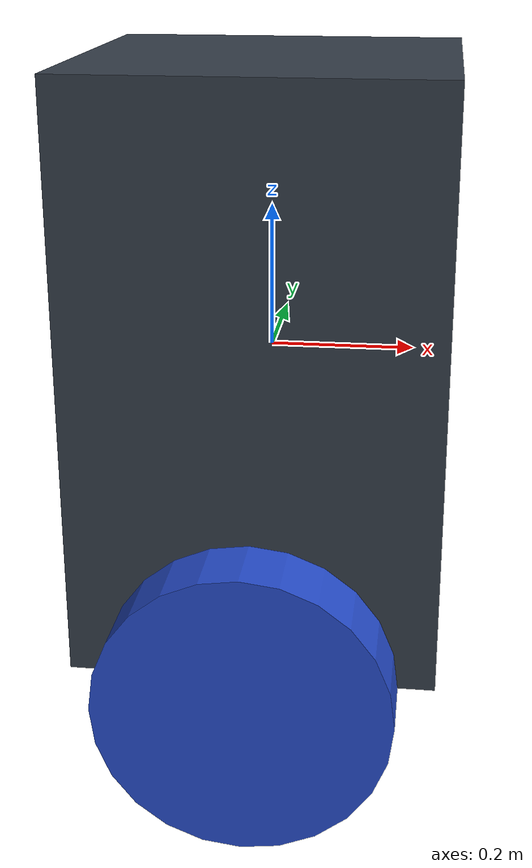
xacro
<?xml version="1.0" ?>

<robot name="m2wr" xmlns:xacro="https://www.ros.org/wiki/xacro" >

  <material name="black">
    <color rgba="0.0 0.0 0.0 1.0"/>
  </material>
  <material name="blue">
    <color rgba="0.203125 0.23828125 0.28515625 1.0"/>
  </material>
  <material name="green">
    <color rgba="0.0 0.8 0.0 1.0"/>
  </material>
  <material name="grey">
    <color rgba="0.2 0.2 0.2 1.0"/>
  </material>
  <material name="orange">
    <color rgba="1.0 0.423529411765 0.0392156862745 1.0"/>
  </material>
  <material name="brown">
    <color rgba="0.870588235294 0.811764705882 0.764705882353 1.0"/>
  </material>
  <material name="red">
    <color rgba="0.80078125 0.12890625 0.1328125 1.0"/>
  </material>
  <material name="white">
    <color rgba="1.0 1.0 1.0 1.0"/>
  </material>

  <gazebo reference="link_chassis">
    <material>Gazebo/Orange</material>
  </gazebo>
  <gazebo reference="link_left_wheel">
    <material>Gazebo/Blue</material>
  </gazebo>
  <gazebo reference="link_right_wheel">
    <material>Gazebo/Blue</material>
  </gazebo>

  <link name="link_chassis">
    <!-- pose and inertial -->
    <pose>0 0 0 0 0 0</pose>

    <inertial>
      <mass value="5"/>
      <origin rpy="0 0 0" xyz="0 0 0.1"/>
      <inertia ixx="0.0395416666667" ixy="0" ixz="0" iyy="0.106208333333" iyz="0" izz="0.106208333333"/>
    </inertial>

    <collision name="collision_chassis">
      <geometry>
        <box size="0.5 0.5 0.8"/>
      </geometry>
    </collision>

    <visual>
      <origin rpy="0 0 0" xyz="0 0 0"/>
      <geometry>
        <box size="0.5 0.5 0.8"/>
      </geometry>
      <material name="blue"/>
    </visual>

    <!-- caster front -->
    </link>

  <!-- Create wheel right -->

  <link name="link_right_wheel">
    <inertial>
      <mass value="0.2"/>
      <origin rpy="0 1.5707 1.5707" xyz="0 0 0"/>
      <inertia ixx="0.00052666666" ixy="0" ixz="0" iyy="0.00052666666" iyz="0" izz="0.001"/>
    </inertial>

    <collision name="link_right_wheel_collision">
      <origin rpy="0 1.5707 1.5707" xyz="0 0 0" />
      <geometry>
        <cylinder length="0.1" radius="0.2"/>
      </geometry>
    </collision>

    <visual name="link_right_wheel_visual">
      <origin rpy="0 1.5707 1.5707" xyz="0 0 0"/>
      <geometry>
        <cylinder length="0.1" radius="0.2"/>
      </geometry>
    </visual>

  </link>

  <!--   Joint for right wheel  -->
  <joint name="joint_right_wheel" type="continuous">
    <origin rpy="0 0 0" xyz="0 0.3 -0.4"/>
    <child link="link_right_wheel" />
    <parent link="link_chassis"/>
    <axis rpy="0 0 0" xyz="0 -1 0"/>
    <limit effort="10000" velocity="1000"/>
    <joint_properties damping="1.0" friction="1.0" />
  </joint>

  <!-- Left Wheel link -->

  <link name="link_left_wheel">
    <inertial>
      <mass value="0.2"/>
      <origin rpy="0 1.5707 1.5707" xyz="0 0 0"/>
      <inertia ixx="0.00052666666" ixy="0" ixz="0" iyy="0.00052666666" iyz="0" izz="0.001"/>
    </inertial>

    <collision name="link_left_wheel_collision">
      <origin rpy="0 1.5707 1.5707" xyz="0 0 0" />
      <geometry>
        <cylinder length="0.1" radius="0.2"/>
      </geometry>
    </collision>

    <visual name="link_left_wheel_visual">
      <origin rpy="0 1.5707 1.5707" xyz="0 0 0"/>
      <geometry>
        <cylinder length="0.1" radius="0.2"/>
      </geometry>
    </visual>

  </link>

  <!--   Joint for right wheel  -->
  <joint name="joint_left_wheel" type="continuous">
    <origin rpy="0 0 0" xyz="0 -0.3 -0.4"/>
    <child link="link_left_wheel" />
    <parent link="link_chassis"/>
    <axis rpy="0 0 0" xyz="0 1 0"/>
    <limit effort="10000" velocity="1000"/>
    <joint_properties damping="1.0" friction="1.0" />
  </joint>

  <gazebo>
    <plugin name="differential_drive_controller" filename="libgazebo_ros_diff_drive.so">
      <update_rate>20</update_rate>
      <left_joint>joint_left_wheel</left_joint>
      <right_joint>joint_right_wheel</right_joint>
      <wheel_separation>0.4</wheel_separation>
      <wheel_diameter>0.2</wheel_diameter>
      <wheel_torque>0.1</wheel_torque>
      <command_topic>cmd_vel</command_topic>
      <odometry_topic>odom</odometry_topic>
      <odometry_frame>odom</odometry_frame>
      <robot_base_frame>link_chassis</robot_base_frame>
    </plugin>

  </gazebo>
  <gazebo reference="link_chassis">
  	<sensor name="my_imu" type="imu">
	    <always_on>true</always_on>
	    <!-- Publish at 30 hz -->
	    <update_rate>30</update_rate>
	    <plugin name="my_imu_plugin" filename="libgazebo_ros_imu_sensor.so">
	      <ros>
		<!-- Will publish to /imu/data -->
		<namespace>/imu</namespace>
		<remapping>~/out:=data</remapping>
	      </ros>
	      <frame_name>link_chassis</frame_name>
	      <initial_orientation_as_reference>false</initial_orientation_as_reference>
	    </plugin>
  	</sensor>
  </gazebo>

</robot>
